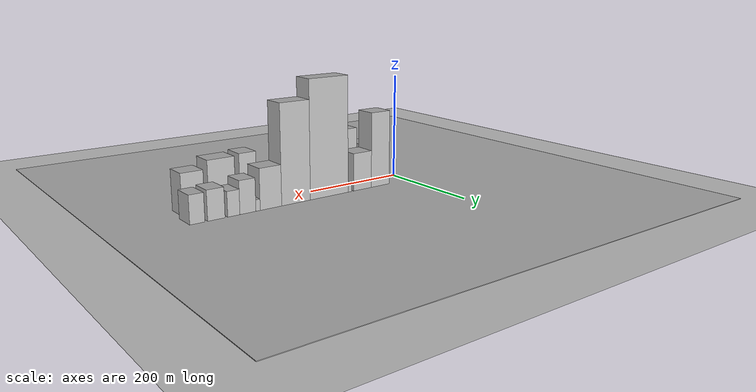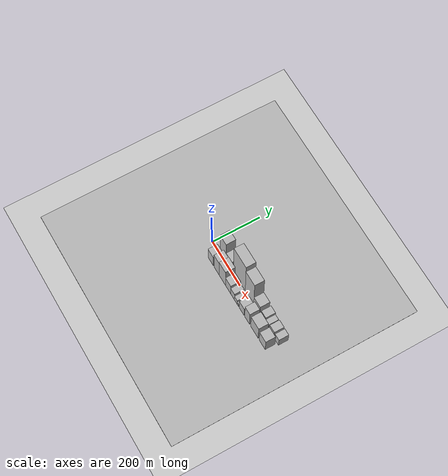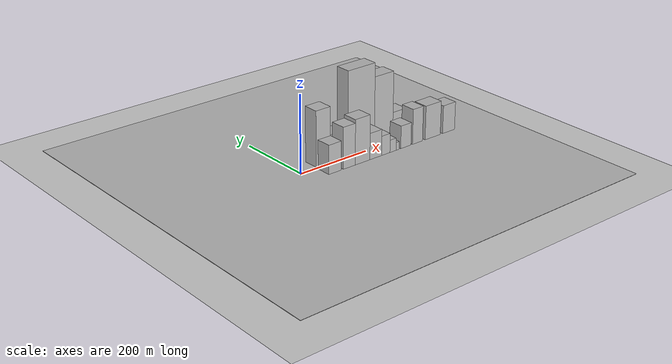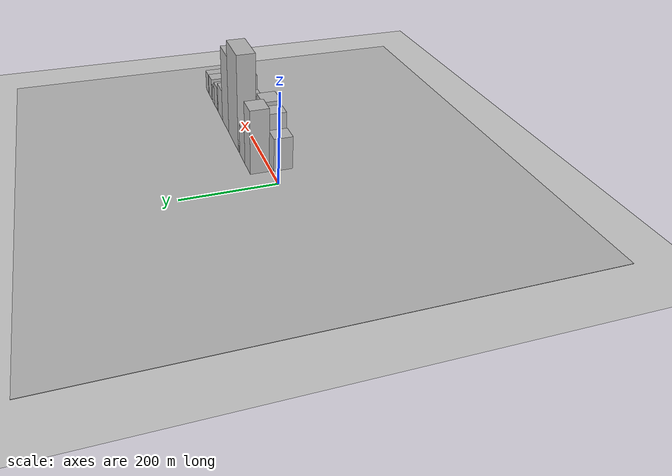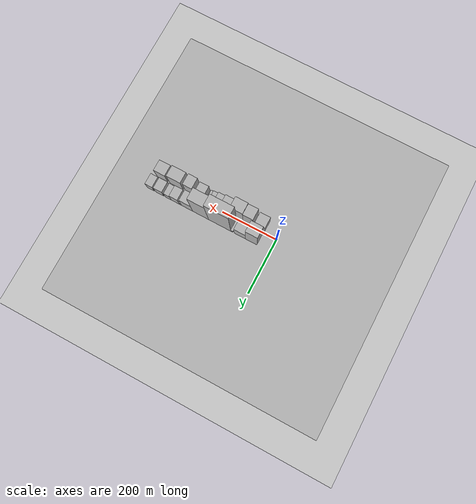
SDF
<?xml version="1.0" encoding="utf-8"?>

<sdf version="1.6">

   <world name="default">

      <gui fullscreen="0">

         <camera name="user_camera">

            <pose>-15 0 4.57585 0 0 0</pose>

            <view_controller>orbit</view_controller>

         </camera>

      </gui>

      <scene>

         <sky>

           <clouds>

             <speed>12</speed>

           </clouds>

         </sky>

         <ambient>0.4 0.4 0.4 1</ambient>

         <background>0.7 0.7 0.7 1</background>

         <shadows>1</shadows>

      </scene>

      <gravity>0 0 -9.8066</gravity>

      <magnetic_field>6e-06 2.3e-05 -4.2e-05</magnetic_field>

      <physics default="0" name="default_physics" type="ode">

         <ode>

            <solver>

               <type>quick</type>

               <iters>10</iters>

               <sor>1.0</sor>

               <use_dynamic_moi_rescaling>0</use_dynamic_moi_rescaling>

            </solver>

            <constraints>

               <cfm>0</cfm>

               <erp>0.2</erp>

               <contact_max_correcting_vel>100</contact_max_correcting_vel>

               <contact_surface_layer>0.001</contact_surface_layer>

            </constraints>

         </ode>

         <max_step_size>0.004</max_step_size>

         <real_time_factor>1</real_time_factor>

         <real_time_update_rate>250</real_time_update_rate>

      </physics>

      <light name="sun" type="directional">

         <cast_shadows>1</cast_shadows>

         <pose>0 0 10 0 0 0</pose>

         <diffuse>0.8 0.8 0.8 1</diffuse>

         <specular>0.2 0.2 0.2 1</specular>

         <attenuation>

            <range>1000</range>

            <constant>0.9</constant>

            <linear>0.01</linear>

            <quadratic>0.001</quadratic>

         </attenuation>

         <direction>-0.5 0.1 -0.9</direction>

      </light>

      <include>

         <name>ground_plane_1</name>

         <uri>model://HANNAS_ground_plane</uri>

         <pose>0 0 0  0 0 0</pose>

      </include>

      <include>

         <name>ground_plane_2</name>

         <uri>model://HANNAS_ground_plane</uri>

         <pose>100 0 0  0 0 0</pose>

      </include>

      <model name="building_1">

         <static>1</static>

         <pose frame="">70.6350 24.5000 0 0.000000 0.000000 1.570796</pose>

         <link name="link">

            <pose frame="">0 0 72.00 0 0 0</pose>

            <collision name="collision">

               <geometry>

                  <box>

                     <size>40.0000 43.2700 144.0000</size>

                  </box>

               </geometry>

               <max_contacts>10</max_contacts>

               <surface>

                  <contact>

                     <ode/>

                  </contact>

                  <bounce/>

                  <friction>

                     <torsional>

                        <ode/>

                     </torsional>

                     <ode/>

                  </friction>

               </surface>

            </collision>

            <visual name="visual">

               <cast_shadows>0</cast_shadows>

               <geometry>

                  <box>

                     <size>40.0000 43.2700 144.0000</size>

                  </box>

               </geometry>

               <material>

                  <script>

                     <uri>model://HANNAS_wall/materials/scripts</uri>

                     <uri>model://HANNAS_wall/materials/textures</uri>

                     <name>vrc/HANNAS_wall</name>

                  </script>

               </material>

            </visual>

            <self_collide>0</self_collide>

            <enable_wind>0</enable_wind>

            <kinematic>0</kinematic>

         </link>

      </model>

      <model name="building_2">

         <static>1</static>

         <pose frame="">113.1995 24.5000 0 0.000000 0.000000 1.570796</pose>

         <link name="link">

            <pose frame="">0 0 36.00 0 0 0</pose>

            <collision name="collision">

               <geometry>

                  <box>

                     <size>40.0000 41.8589 72.0000</size>

                  </box>

               </geometry>

               <max_contacts>10</max_contacts>

               <surface>

                  <contact>

                     <ode/>

                  </contact>

                  <bounce/>

                  <friction>

                     <torsional>

                        <ode/>

                     </torsional>

                     <ode/>

                  </friction>

               </surface>

            </collision>

            <visual name="visual">

               <cast_shadows>0</cast_shadows>

               <geometry>

                  <box>

                     <size>40.0000 41.8589 72.0000</size>

                  </box>

               </geometry>

               <material>

                  <script>

                     <uri>model://HANNAS_wall/materials/scripts</uri>

                     <uri>model://HANNAS_wall/materials/textures</uri>

                     <name>vrc/HANNAS_wall</name>

                  </script>

               </material>

            </visual>

            <self_collide>0</self_collide>

            <enable_wind>0</enable_wind>

            <kinematic>0</kinematic>

         </link>

      </model>

      <model name="building_3">

         <static>1</static>

         <pose frame="">142.5076 24.5000 0 0.000000 0.000000 1.570796</pose>

         <link name="link">

            <pose frame="">0 0 9.00 0 0 0</pose>

            <collision name="collision">

               <geometry>

                  <box>

                     <size>40.0000 8.7572 18.0000</size>

                  </box>

               </geometry>

               <max_contacts>10</max_contacts>

               <surface>

                  <contact>

                     <ode/>

                  </contact>

                  <bounce/>

                  <friction>

                     <torsional>

                        <ode/>

                     </torsional>

                     <ode/>

                  </friction>

               </surface>

            </collision>

            <visual name="visual">

               <cast_shadows>0</cast_shadows>

               <geometry>

                  <box>

                     <size>40.0000 8.7572 18.0000</size>

                  </box>

               </geometry>

               <material>

                  <script>

                     <uri>model://HANNAS_wall/materials/scripts</uri>

                     <uri>model://HANNAS_wall/materials/textures</uri>

                     <name>vrc/HANNAS_wall</name>

                  </script>

               </material>

            </visual>

            <self_collide>0</self_collide>

            <enable_wind>0</enable_wind>

            <kinematic>0</kinematic>

         </link>

      </model>

      <model name="building_4">

         <static>1</static>

         <pose frame="">188.7132 24.5000 0 0.000000 0.000000 1.570796</pose>

         <link name="link">

            <pose frame="">0 0 109.50 0 0 0</pose>

            <collision name="collision">

               <geometry>

                  <box>

                     <size>40.0000 83.6542 219.0000</size>

                  </box>

               </geometry>

               <max_contacts>10</max_contacts>

               <surface>

                  <contact>

                     <ode/>

                  </contact>

                  <bounce/>

                  <friction>

                     <torsional>

                        <ode/>

                     </torsional>

                     <ode/>

                  </friction>

               </surface>

            </collision>

            <visual name="visual">

               <cast_shadows>0</cast_shadows>

               <geometry>

                  <box>

                     <size>40.0000 83.6542 219.0000</size>

                  </box>

               </geometry>

               <material>

                  <script>

                     <uri>model://HANNAS_wall/materials/scripts</uri>

                     <uri>model://HANNAS_wall/materials/textures</uri>

                     <name>vrc/HANNAS_wall</name>

                  </script>

               </material>

            </visual>

            <self_collide>0</self_collide>

            <enable_wind>0</enable_wind>

            <kinematic>0</kinematic>

         </link>

      </model>

      <model name="building_5">

         <static>1</static>

         <pose frame="">260.6108 24.5000 0 0.000000 0.000000 1.570796</pose>

         <link name="link">

            <pose frame="">0 0 91.50 0 0 0</pose>

            <collision name="collision">

               <geometry>

                  <box>

                     <size>40.0000 60.1410 183.0000</size>

                  </box>

               </geometry>

               <max_contacts>10</max_contacts>

               <surface>

                  <contact>

                     <ode/>

                  </contact>

                  <bounce/>

                  <friction>

                     <torsional>

                        <ode/>

                     </torsional>

                     <ode/>

                  </friction>

               </surface>

            </collision>

            <visual name="visual">

               <cast_shadows>0</cast_shadows>

               <geometry>

                  <box>

                     <size>40.0000 60.1410 183.0000</size>

                  </box>

               </geometry>

               <material>

                  <script>

                     <uri>model://HANNAS_wall/materials/scripts</uri>

                     <uri>model://HANNAS_wall/materials/textures</uri>

                     <name>vrc/HANNAS_wall</name>

                  </script>

               </material>

            </visual>

            <self_collide>0</self_collide>

            <enable_wind>0</enable_wind>

            <kinematic>0</kinematic>

         </link>

      </model>

      <model name="building_6">

         <static>1</static>

         <pose frame="">312.2208 24.5000 0 0.000000 0.000000 1.570796</pose>

         <link name="link">

            <pose frame="">0 0 37.50 0 0 0</pose>

            <collision name="collision">

               <geometry>

                  <box>

                     <size>40.0000 43.0791 75.0000</size>

                  </box>

               </geometry>

               <max_contacts>10</max_contacts>

               <surface>

                  <contact>

                     <ode/>

                  </contact>

                  <bounce/>

                  <friction>

                     <torsional>

                        <ode/>

                     </torsional>

                     <ode/>

                  </friction>

               </surface>

            </collision>

            <visual name="visual">

               <cast_shadows>0</cast_shadows>

               <geometry>

                  <box>

                     <size>40.0000 43.0791 75.0000</size>

                  </box>

               </geometry>

               <material>

                  <script>

                     <uri>model://HANNAS_wall/materials/scripts</uri>

                     <uri>model://HANNAS_wall/materials/textures</uri>

                     <name>vrc/HANNAS_wall</name>

                  </script>

               </material>

            </visual>

            <self_collide>0</self_collide>

            <enable_wind>0</enable_wind>

            <kinematic>0</kinematic>

         </link>

      </model>

      <model name="building_7">

         <static>1</static>

         <pose frame="">337.9820 24.5000 0 0.000000 0.000000 1.570796</pose>

         <link name="link">

            <pose frame="">0 0 10.50 0 0 0</pose>

            <collision name="collision">

               <geometry>

                  <box>

                     <size>40.0000 8.4431 21.0000</size>

                  </box>

               </geometry>

               <max_contacts>10</max_contacts>

               <surface>

                  <contact>

                     <ode/>

                  </contact>

                  <bounce/>

                  <friction>

                     <torsional>

                        <ode/>

                     </torsional>

                     <ode/>

                  </friction>

               </surface>

            </collision>

            <visual name="visual">

               <cast_shadows>0</cast_shadows>

               <geometry>

                  <box>

                     <size>40.0000 8.4431 21.0000</size>

                  </box>

               </geometry>

               <material>

                  <script>

                     <uri>model://HANNAS_wall/materials/scripts</uri>

                     <uri>model://HANNAS_wall/materials/textures</uri>

                     <name>vrc/HANNAS_wall</name>

                  </script>

               </material>

            </visual>

            <self_collide>0</self_collide>

            <enable_wind>0</enable_wind>

            <kinematic>0</kinematic>

         </link>

      </model>

      <model name="building_8">

         <static>1</static>

         <pose frame="">357.6203 24.5000 0 0.000000 0.000000 1.570796</pose>

         <link name="link">

            <pose frame="">0 0 30.00 0 0 0</pose>

            <collision name="collision">

               <geometry>

                  <box>

                     <size>40.0000 30.8336 60.0000</size>

                  </box>

               </geometry>

               <max_contacts>10</max_contacts>

               <surface>

                  <contact>

                     <ode/>

                  </contact>

                  <bounce/>

                  <friction>

                     <torsional>

                        <ode/>

                     </torsional>

                     <ode/>

                  </friction>

               </surface>

            </collision>

            <visual name="visual">

               <cast_shadows>0</cast_shadows>

               <geometry>

                  <box>

                     <size>40.0000 30.8336 60.0000</size>

                  </box>

               </geometry>

               <material>

                  <script>

                     <uri>model://HANNAS_wall/materials/scripts</uri>

                     <uri>model://HANNAS_wall/materials/textures</uri>

                     <name>vrc/HANNAS_wall</name>

                  </script>

               </material>

            </visual>

            <self_collide>0</self_collide>

            <enable_wind>0</enable_wind>

            <kinematic>0</kinematic>

         </link>

      </model>

      <model name="building_9">

         <static>1</static>

         <pose frame="">384.5232 24.5000 0 0.000000 0.000000 1.570796</pose>

         <link name="link">

            <pose frame="">0 0 22.50 0 0 0</pose>

            <collision name="collision">

               <geometry>

                  <box>

                     <size>40.0000 22.9722 45.0000</size>

                  </box>

               </geometry>

               <max_contacts>10</max_contacts>

               <surface>

                  <contact>

                     <ode/>

                  </contact>

                  <bounce/>

                  <friction>

                     <torsional>

                        <ode/>

                     </torsional>

                     <ode/>

                  </friction>

               </surface>

            </collision>

            <visual name="visual">

               <cast_shadows>0</cast_shadows>

               <geometry>

                  <box>

                     <size>40.0000 22.9722 45.0000</size>

                  </box>

               </geometry>

               <material>

                  <script>

                     <uri>model://HANNAS_wall/materials/scripts</uri>

                     <uri>model://HANNAS_wall/materials/textures</uri>

                     <name>vrc/HANNAS_wall</name>

                  </script>

               </material>

            </visual>

            <self_collide>0</self_collide>

            <enable_wind>0</enable_wind>

            <kinematic>0</kinematic>

         </link>

      </model>

      <model name="building_10">

         <static>1</static>

         <pose frame="">416.8978 24.5000 0 0.000000 0.000000 1.570796</pose>

         <link name="link">

            <pose frame="">0 0 27.00 0 0 0</pose>

            <collision name="collision">

               <geometry>

                  <box>

                     <size>40.0000 31.7770 54.0000</size>

                  </box>

               </geometry>

               <max_contacts>10</max_contacts>

               <surface>

                  <contact>

                     <ode/>

                  </contact>

                  <bounce/>

                  <friction>

                     <torsional>

                        <ode/>

                     </torsional>

                     <ode/>

                  </friction>

               </surface>

            </collision>

            <visual name="visual">

               <cast_shadows>0</cast_shadows>

               <geometry>

                  <box>

                     <size>40.0000 31.7770 54.0000</size>

                  </box>

               </geometry>

               <material>

                  <script>

                     <uri>model://HANNAS_wall/materials/scripts</uri>

                     <uri>model://HANNAS_wall/materials/textures</uri>

                     <name>vrc/HANNAS_wall</name>

                  </script>

               </material>

            </visual>

            <self_collide>0</self_collide>

            <enable_wind>0</enable_wind>

            <kinematic>0</kinematic>

         </link>

      </model>

      <model name="building_11">

         <static>1</static>

         <pose frame="">451.2802 24.5000 0 0.000000 0.000000 1.570796</pose>

         <link name="link">

            <pose frame="">0 0 25.50 0 0 0</pose>

            <collision name="collision">

               <geometry>

                  <box>

                     <size>40.0000 26.9877 51.0000</size>

                  </box>

               </geometry>

               <max_contacts>10</max_contacts>

               <surface>

                  <contact>

                     <ode/>

                  </contact>

                  <bounce/>

                  <friction>

                     <torsional>

                        <ode/>

                     </torsional>

                     <ode/>

                  </friction>

               </surface>

            </collision>

            <visual name="visual">

               <cast_shadows>0</cast_shadows>

               <geometry>

                  <box>

                     <size>40.0000 26.9877 51.0000</size>

                  </box>

               </geometry>

               <material>

                  <script>

                     <uri>model://HANNAS_wall/materials/scripts</uri>

                     <uri>model://HANNAS_wall/materials/textures</uri>

                     <name>vrc/HANNAS_wall</name>

                  </script>

               </material>

            </visual>

            <self_collide>0</self_collide>

            <enable_wind>0</enable_wind>

            <kinematic>0</kinematic>

         </link>

      </model>

      <model name="building_12">

         <static>1</static>

         <pose frame="">65.9126 -24.5000 0 0.000000 0.000000 1.570796</pose>

         <link name="link">

            <pose frame="">0 0 37.50 0 0 0</pose>

            <collision name="collision">

               <geometry>

                  <box>

                     <size>40.0000 37.8252 75.0000</size>

                  </box>

               </geometry>

               <max_contacts>10</max_contacts>

               <surface>

                  <contact>

                     <ode/>

                  </contact>

                  <bounce/>

                  <friction>

                     <torsional>

                        <ode/>

                     </torsional>

                     <ode/>

                  </friction>

               </surface>

            </collision>

            <visual name="visual">

               <cast_shadows>0</cast_shadows>

               <geometry>

                  <box>

                     <size>40.0000 37.8252 75.0000</size>

                  </box>

               </geometry>

               <material>

                  <script>

                     <uri>model://HANNAS_wall/materials/scripts</uri>

                     <uri>model://HANNAS_wall/materials/textures</uri>

                     <name>vrc/HANNAS_wall</name>

                  </script>

               </material>

            </visual>

            <self_collide>0</self_collide>

            <enable_wind>0</enable_wind>

            <kinematic>0</kinematic>

         </link>

      </model>

      <model name="building_13">

         <static>1</static>

         <pose frame="">109.2556 -24.5000 0 0.000000 0.000000 1.570796</pose>

         <link name="link">

            <pose frame="">0 0 54.00 0 0 0</pose>

            <collision name="collision">

               <geometry>

                  <box>

                     <size>40.0000 36.8608 108.0000</size>

                  </box>

               </geometry>

               <max_contacts>10</max_contacts>

               <surface>

                  <contact>

                     <ode/>

                  </contact>

                  <bounce/>

                  <friction>

                     <torsional>

                        <ode/>

                     </torsional>

                     <ode/>

                  </friction>

               </surface>

            </collision>

            <visual name="visual">

               <cast_shadows>0</cast_shadows>

               <geometry>

                  <box>

                     <size>40.0000 36.8608 108.0000</size>

                  </box>

               </geometry>

               <material>

                  <script>

                     <uri>model://HANNAS_wall/materials/scripts</uri>

                     <uri>model://HANNAS_wall/materials/textures</uri>

                     <name>vrc/HANNAS_wall</name>

                  </script>

               </material>

            </visual>

            <self_collide>0</self_collide>

            <enable_wind>0</enable_wind>

            <kinematic>0</kinematic>

         </link>

      </model>

      <model name="building_14">

         <static>1</static>

         <pose frame="">150.5783 -24.5000 0 0.000000 0.000000 1.570796</pose>

         <link name="link">

            <pose frame="">0 0 58.50 0 0 0</pose>

            <collision name="collision">

               <geometry>

                  <box>

                     <size>40.0000 45.7846 117.0000</size>

                  </box>

               </geometry>

               <max_contacts>10</max_contacts>

               <surface>

                  <contact>

                     <ode/>

                  </contact>

                  <bounce/>

                  <friction>

                     <torsional>

                        <ode/>

                     </torsional>

                     <ode/>

                  </friction>

               </surface>

            </collision>

            <visual name="visual">

               <cast_shadows>0</cast_shadows>

               <geometry>

                  <box>

                     <size>40.0000 45.7846 117.0000</size>

                  </box>

               </geometry>

               <material>

                  <script>

                     <uri>model://HANNAS_wall/materials/scripts</uri>

                     <uri>model://HANNAS_wall/materials/textures</uri>

                     <name>vrc/HANNAS_wall</name>

                  </script>

               </material>

            </visual>

            <self_collide>0</self_collide>

            <enable_wind>0</enable_wind>

            <kinematic>0</kinematic>

         </link>

      </model>

      <model name="building_15">

         <static>1</static>

         <pose frame="">192.1910 -24.5000 0 0.000000 0.000000 1.570796</pose>

         <link name="link">

            <pose frame="">0 0 34.50 0 0 0</pose>

            <collision name="collision">

               <geometry>

                  <box>

                     <size>40.0000 37.4408 69.0000</size>

                  </box>

               </geometry>

               <max_contacts>10</max_contacts>

               <surface>

                  <contact>

                     <ode/>

                  </contact>

                  <bounce/>

                  <friction>

                     <torsional>

                        <ode/>

                     </torsional>

                     <ode/>

                  </friction>

               </surface>

            </collision>

            <visual name="visual">

               <cast_shadows>0</cast_shadows>

               <geometry>

                  <box>

                     <size>40.0000 37.4408 69.0000</size>

                  </box>

               </geometry>

               <material>

                  <script>

                     <uri>model://HANNAS_wall/materials/scripts</uri>

                     <uri>model://HANNAS_wall/materials/textures</uri>

                     <name>vrc/HANNAS_wall</name>

                  </script>

               </material>

            </visual>

            <self_collide>0</self_collide>

            <enable_wind>0</enable_wind>

            <kinematic>0</kinematic>

         </link>

      </model>

      <model name="building_16">

         <static>1</static>

         <pose frame="">224.4524 -24.5000 0 0.000000 0.000000 1.570796</pose>

         <link name="link">

            <pose frame="">0 0 25.50 0 0 0</pose>

            <collision name="collision">

               <geometry>

                  <box>

                     <size>40.0000 27.0820 51.0000</size>

                  </box>

               </geometry>

               <max_contacts>10</max_contacts>

               <surface>

                  <contact>

                     <ode/>

                  </contact>

                  <bounce/>

                  <friction>

                     <torsional>

                        <ode/>

                     </torsional>

                     <ode/>

                  </friction>

               </surface>

            </collision>

            <visual name="visual">

               <cast_shadows>0</cast_shadows>

               <geometry>

                  <box>

                     <size>40.0000 27.0820 51.0000</size>

                  </box>

               </geometry>

               <material>

                  <script>

                     <uri>model://HANNAS_wall/materials/scripts</uri>

                     <uri>model://HANNAS_wall/materials/textures</uri>

                     <name>vrc/HANNAS_wall</name>

                  </script>

               </material>

            </visual>

            <self_collide>0</self_collide>

            <enable_wind>0</enable_wind>

            <kinematic>0</kinematic>

         </link>

      </model>

      <model name="building_17">

         <static>1</static>

         <pose frame="">247.8630 -24.5000 0 0.000000 0.000000 1.570796</pose>

         <link name="link">

            <pose frame="">0 0 16.50 0 0 0</pose>

            <collision name="collision">

               <geometry>

                  <box>

                     <size>40.0000 19.7391 33.0000</size>

                  </box>

               </geometry>

               <max_contacts>10</max_contacts>

               <surface>

                  <contact>

                     <ode/>

                  </contact>

                  <bounce/>

                  <friction>

                     <torsional>

                        <ode/>

                     </torsional>

                     <ode/>

                  </friction>

               </surface>

            </collision>

            <visual name="visual">

               <cast_shadows>0</cast_shadows>

               <geometry>

                  <box>

                     <size>40.0000 19.7391 33.0000</size>

                  </box>

               </geometry>

               <material>

                  <script>

                     <uri>model://HANNAS_wall/materials/scripts</uri>

                     <uri>model://HANNAS_wall/materials/textures</uri>

                     <name>vrc/HANNAS_wall</name>

                  </script>

               </material>

            </visual>

            <self_collide>0</self_collide>

            <enable_wind>0</enable_wind>

            <kinematic>0</kinematic>

         </link>

      </model>

      <model name="building_18">

         <static>1</static>

         <pose frame="">262.8890 -24.5000 0 0.000000 0.000000 1.570796</pose>

         <link name="link">

            <pose frame="">0 0 10.50 0 0 0</pose>

            <collision name="collision">

               <geometry>

                  <box>

                     <size>40.0000 10.3130 21.0000</size>

                  </box>

               </geometry>

               <max_contacts>10</max_contacts>

               <surface>

                  <contact>

                     <ode/>

                  </contact>

                  <bounce/>

                  <friction>

                     <torsional>

                        <ode/>

                     </torsional>

                     <ode/>

                  </friction>

               </surface>

            </collision>

            <visual name="visual">

               <cast_shadows>0</cast_shadows>

               <geometry>

                  <box>

                     <size>40.0000 10.3130 21.0000</size>

                  </box>

               </geometry>

               <material>

                  <script>

                     <uri>model://HANNAS_wall/materials/scripts</uri>

                     <uri>model://HANNAS_wall/materials/textures</uri>

                     <name>vrc/HANNAS_wall</name>

                  </script>

               </material>

            </visual>

            <self_collide>0</self_collide>

            <enable_wind>0</enable_wind>

            <kinematic>0</kinematic>

         </link>

      </model>

      <model name="building_19">

         <static>1</static>

         <pose frame="">289.9826 -24.5000 0 0.000000 0.000000 1.570796</pose>

         <link name="link">

            <pose frame="">0 0 30.00 0 0 0</pose>

            <collision name="collision">

               <geometry>

                  <box>

                     <size>40.0000 33.8741 60.0000</size>

                  </box>

               </geometry>

               <max_contacts>10</max_contacts>

               <surface>

                  <contact>

                     <ode/>

                  </contact>

                  <bounce/>

                  <friction>

                     <torsional>

                        <ode/>

                     </torsional>

                     <ode/>

                  </friction>

               </surface>

            </collision>

            <visual name="visual">

               <cast_shadows>0</cast_shadows>

               <geometry>

                  <box>

                     <size>40.0000 33.8741 60.0000</size>

                  </box>

               </geometry>

               <material>

                  <script>

                     <uri>model://HANNAS_wall/materials/scripts</uri>

                     <uri>model://HANNAS_wall/materials/textures</uri>

                     <name>vrc/HANNAS_wall</name>

                  </script>

               </material>

            </visual>

            <self_collide>0</self_collide>

            <enable_wind>0</enable_wind>

            <kinematic>0</kinematic>

         </link>

      </model>

      <model name="building_20">

         <static>1</static>

         <pose frame="">328.6677 -24.5000 0 0.000000 0.000000 1.570796</pose>

         <link name="link">

            <pose frame="">0 0 46.50 0 0 0</pose>

            <collision name="collision">

               <geometry>

                  <box>

                     <size>40.0000 33.4961 93.0000</size>

                  </box>

               </geometry>

               <max_contacts>10</max_contacts>

               <surface>

                  <contact>

                     <ode/>

                  </contact>

                  <bounce/>

                  <friction>

                     <torsional>

                        <ode/>

                     </torsional>

                     <ode/>

                  </friction>

               </surface>

            </collision>

            <visual name="visual">

               <cast_shadows>0</cast_shadows>

               <geometry>

                  <box>

                     <size>40.0000 33.4961 93.0000</size>

                  </box>

               </geometry>

               <material>

                  <script>

                     <uri>model://HANNAS_wall/materials/scripts</uri>

                     <uri>model://HANNAS_wall/materials/textures</uri>

                     <name>vrc/HANNAS_wall</name>

                  </script>

               </material>

            </visual>

            <self_collide>0</self_collide>

            <enable_wind>0</enable_wind>

            <kinematic>0</kinematic>

         </link>

      </model>

      <model name="building_21">

         <static>1</static>

         <pose frame="">380.1868 -24.5000 0 0.000000 0.000000 1.570796</pose>

         <link name="link">

            <pose frame="">0 0 45.00 0 0 0</pose>

            <collision name="collision">

               <geometry>

                  <box>

                     <size>40.0000 51.5421 90.0000</size>

                  </box>

               </geometry>

               <max_contacts>10</max_contacts>

               <surface>

                  <contact>

                     <ode/>

                  </contact>

                  <bounce/>

                  <friction>

                     <torsional>

                        <ode/>

                     </torsional>

                     <ode/>

                  </friction>

               </surface>

            </collision>

            <visual name="visual">

               <cast_shadows>0</cast_shadows>

               <geometry>

                  <box>

                     <size>40.0000 51.5421 90.0000</size>

                  </box>

               </geometry>

               <material>

                  <script>

                     <uri>model://HANNAS_wall/materials/scripts</uri>

                     <uri>model://HANNAS_wall/materials/textures</uri>

                     <name>vrc/HANNAS_wall</name>

                  </script>

               </material>

            </visual>

            <self_collide>0</self_collide>

            <enable_wind>0</enable_wind>

            <kinematic>0</kinematic>

         </link>

      </model>

      <model name="building_22">

         <static>1</static>

         <pose frame="">434.7062 -24.5000 0 0.000000 0.000000 1.570796</pose>

         <link name="link">

            <pose frame="">0 0 37.50 0 0 0</pose>

            <collision name="collision">

               <geometry>

                  <box>

                     <size>40.0000 41.4968 75.0000</size>

                  </box>

               </geometry>

               <max_contacts>10</max_contacts>

               <surface>

                  <contact>

                     <ode/>

                  </contact>

                  <bounce/>

                  <friction>

                     <torsional>

                        <ode/>

                     </torsional>

                     <ode/>

                  </friction>

               </surface>

            </collision>

            <visual name="visual">

               <cast_shadows>0</cast_shadows>

               <geometry>

                  <box>

                     <size>40.0000 41.4968 75.0000</size>

                  </box>

               </geometry>

               <material>

                  <script>

                     <uri>model://HANNAS_wall/materials/scripts</uri>

                     <uri>model://HANNAS_wall/materials/textures</uri>

                     <name>vrc/HANNAS_wall</name>

                  </script>

               </material>

            </visual>

            <self_collide>0</self_collide>

            <enable_wind>0</enable_wind>

            <kinematic>0</kinematic>

         </link>

      </model>

   </world>

</sdf>

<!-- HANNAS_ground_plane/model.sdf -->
<sdf version="1.4">
<model name="HANNAS_ground_plane">
  <static>true</static>
    <link name="link">
      <collision name="collision">
        <geometry>
          <plane>
            <normal>0 0 1</normal>
            <size>1000 1000</size>
          </plane>
        </geometry>
        <surface>
          <friction>
            <ode>
              <mu>100</mu>
              <mu2>50</mu2>
            </ode>
          </friction>
        </surface>
      </collision>
      <visual name="visual">
        <cast_shadows>false</cast_shadows>
        <geometry>
          <plane>
            <normal>0 0 1</normal>
            <size>1000 1000</size>
          </plane>
        </geometry>
        <material>
          <script>
            <uri>model://HANNAS_ground_plane/materials/scripts/HANNAS_ground_plane.material</uri>
	    <uri>model://HANNAS_ground_plane/materials/textures</uri>
            <name>HANNASGroundPlane/Image</name>
          </script>
        </material>
      </visual>
    </link>
  </model>
</sdf>
